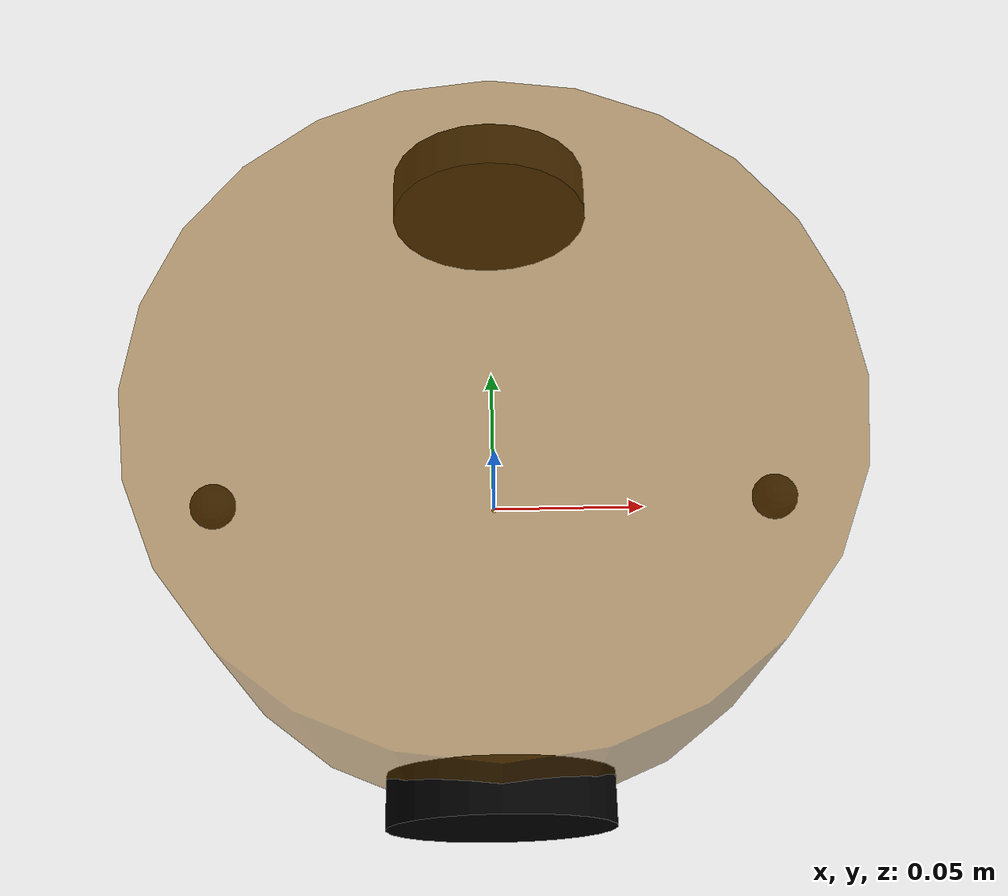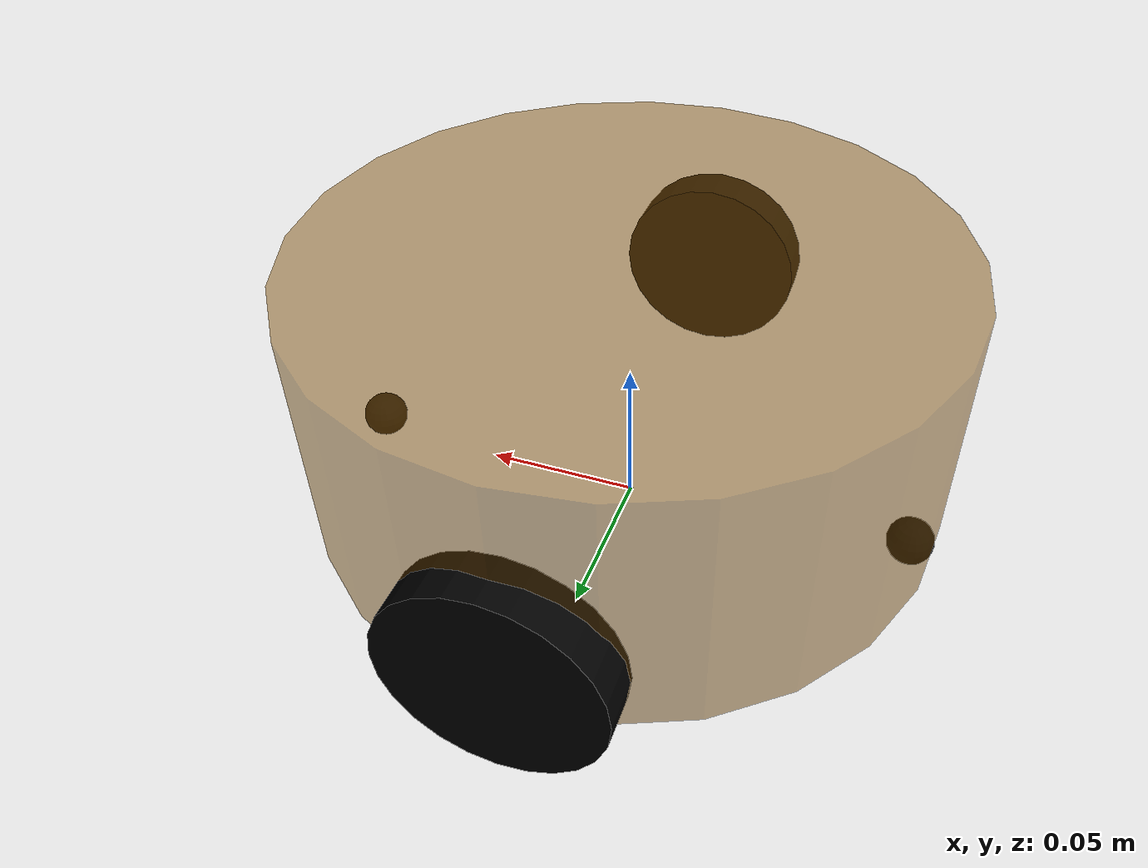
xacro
<?xml version="1.0"?>
<robot name="my_robot" xmlns:xacro="http://wiki.ros.org/xacro">

    <!-- Macros for inertia matrix -->
    <xacro:macro name="sphere_inertial_matrix" params="m r">
        <inertial>
            <mass value="${m}" />
            <inertia ixx="${2*m*r*r/5}" ixy="0" ixz="0"
                iyy="${2*m*r*r/5}" iyz="0"
                izz="${2*m*r*r/5}" />
        </inertial>
    </xacro:macro>

    <xacro:macro name="cylinder_inertial_matrix" params="m r h">
        <inertial>
            <mass value="${m}" />
            <inertia ixx="${m*(3*r*r+h*h)/12}" ixy = "0" ixz = "0"
                iyy="${m*(3*r*r+h*h)/12}" iyz = "0"
                izz="${m*r*r/2}" />
        </inertial>
    </xacro:macro>

    <xacro:macro name="Box_inertial_matrix" params="m l w h">
       <inertial>
               <mass value="${m}" />
               <inertia ixx="${m*(h*h + l*l)/12}" ixy = "0" ixz = "0"
                   iyy="${m*(w*w + l*l)/12}" iyz= "0"
                   izz="${m*(w*w + h*h)/12}" />
       </inertial>
   </xacro:macro>

    <!-- Base Robot -->
    <xacro:property name="PI" value="3.1415926"/>
    <material name="black">
        <color rgba="0.0 0.0 0.0 1.0" />
    </material>
    <xacro:property name="base_footprint_radius" value="0.001" />
    <xacro:property name="base_link_radius" value="0.1" />
    <xacro:property name="base_link_length" value="0.08" />
    <xacro:property name="earth_space" value="0.015" />
    <xacro:property name="base_link_m" value="0.5" />

    <link name="base_footprint">
      <visual>
        <geometry>
          <sphere radius="${base_footprint_radius}" />
        </geometry>
      </visual>
    </link>

    <link name="base_link">
      <visual>
        <geometry>
          <cylinder radius="${base_link_radius}" length="${base_link_length}" />
        </geometry>
        <origin xyz="0 0 0" rpy="0 0 0" />
        <material name="yellow">
          <color rgba="0.5 0.3 0.0 0.5" />
        </material>
      </visual>
      <collision>
        <geometry>
          <cylinder radius="${base_link_radius}" length="${base_link_length}" />
        </geometry>
        <origin xyz="0 0 0" rpy="0 0 0" />
      </collision>
      <xacro:cylinder_inertial_matrix m="${base_link_m}" r="${base_link_radius}" h="${base_link_length}" />
    </link>

    <joint name="base_link2base_footprint" type="fixed">
      <parent link="base_footprint" />
      <child link="base_link" />
      <origin xyz="0 0 ${earth_space + base_link_length / 2 }" />
    </joint>
    <gazebo reference="base_link">
        <material>Gazebo/Yellow</material>
    </gazebo>

    <!-- Wheels -->
    <xacro:property name="wheel_radius" value="0.0325" />
    <xacro:property name="wheel_length" value="0.015" />
    <xacro:property name="wheel_m" value="0.05" />

    <!-- Add Left Wheel -->
    <link name="left_wheel">
        <visual>
          <geometry>
            <cylinder radius="${wheel_radius}" length="${wheel_length}" />
          </geometry>
          <origin xyz="0.0 0.0 0.0" rpy="${PI / 2} 0.0 0.0" />
          <material name="black" />
        </visual>
        <collision>
          <geometry>
            <cylinder radius="${wheel_radius}" length="${wheel_length}" />
          </geometry>
          <origin xyz="0.0 0.0 0.0" rpy="${PI / 2} 0.0 0.0" />
        </collision>
        <xacro:cylinder_inertial_matrix m="${wheel_m}" r="${wheel_radius}" h="${wheel_length}" />
    </link>

    <joint name="left_wheel2base_link" type="continuous">
        <parent link="base_link" />
        <child link="left_wheel" />
        <origin xyz="0 ${base_link_radius} ${-(earth_space + base_link_length / 2 - wheel_radius) }" />
        <axis xyz="0 1 0" />
    </joint>
    <gazebo reference="left_wheel">
        <material>Gazebo/Red</material>
    </gazebo>

    <!-- Add Right Wheel -->
    <link name="right_wheel">
        <visual>
          <geometry>
            <cylinder radius="${wheel_radius}" length="${wheel_length}" />
          </geometry>
          <origin xyz="0.0 0.0 0.0" rpy="${PI / 2} 0.0 0.0" />
          <material name="black" />
        </visual>
        <collision>
          <geometry>
            <cylinder radius="${wheel_radius}" length="${wheel_length}" />
          </geometry>
          <origin xyz="0.0 0.0 0.0" rpy="${PI / 2} 0.0 0.0" />
        </collision>
        <xacro:cylinder_inertial_matrix m="${wheel_m}" r="${wheel_radius}" h="${wheel_length}" />
    </link>

    <joint name="right_wheel2base_link" type="continuous">
        <parent link="base_link" />
        <child link="right_wheel" />
        <origin xyz="0 ${-base_link_radius} ${-(earth_space + base_link_length / 2 - wheel_radius) }" />
        <axis xyz="0 1 0" />
    </joint>
    <gazebo reference="right_wheel">
        <material>Gazebo/Red</material>
    </gazebo>

    <!-- Support Wheels -->
    <xacro:property name="support_wheel_radius" value="0.0075" />
    <xacro:property name="support_wheel_m" value="0.03" />

    <!-- Add Front Support Wheel -->
    <link name="front_wheel">
        <visual>
            <geometry>
                <sphere radius="${support_wheel_radius}" />
            </geometry>
            <origin xyz="0 0 0" rpy="0 0 0" />
            <material name="black" />
        </visual>
        <collision>
            <geometry>
                <sphere radius="${support_wheel_radius}" />
            </geometry>
            <origin xyz="0 0 0" rpy="0 0 0" />
        </collision>
        <xacro:sphere_inertial_matrix m="${support_wheel_m}" r="${support_wheel_radius}" />
    </link>

    <joint name="front_wheel2base_link" type="continuous">
        <parent link="base_link" />
        <child link="front_wheel" />
        <origin xyz="${base_link_radius - support_wheel_radius} 0 ${-(base_link_length / 2 + earth_space / 2)}" />
        <axis xyz="1 1 1" />
    </joint>
    <gazebo reference="front_wheel">
        <material>Gazebo/Red</material>
    </gazebo>

    <!-- Add Back Support Wheel -->
    <link name="back_wheel">
        <visual>
            <geometry>
                <sphere radius="${support_wheel_radius}" />
            </geometry>
            <origin xyz="0 0 0" rpy="0 0 0" />
            <material name="black" />
        </visual>
        <collision>
            <geometry>
                <sphere radius="${support_wheel_radius}" />
            </geometry>
            <origin xyz="0 0 0" rpy="0 0 0" />
        </collision>
        <xacro:sphere_inertial_matrix m="${support_wheel_m}" r="${support_wheel_radius}" />
    </link>

    <joint name="back_wheel2base_link" type="continuous">
        <parent link="base_link" />
        <child link="back_wheel" />
        <origin xyz="${-base_link_radius + support_wheel_radius} 0 ${-(base_link_length / 2 + earth_space / 2)}" />
        <axis xyz="1 1 1" />
    </joint>
    <gazebo reference="back_wheel">
        <material>Gazebo/Red</material>
    </gazebo>

    <!-- Motion Transmission -->
    <xacro:macro name="joint_trans" params="joint_name">
        <transmission name="${joint_name}_trans">
            <type>transmission_interface/SimpleTransmission</type>
            <joint name="${joint_name}">
                <hardwareInterface>hardware_interface/VelocityJointInterface</hardwareInterface>
            </joint>
            <actuator name="${joint_name}_motor">
                <hardwareInterface>hardware_interface/VelocityJointInterface</hardwareInterface>
                <mechanicalReduction>1</mechanicalReduction>
            </actuator>
        </transmission>
    </xacro:macro>

    <xacro:joint_trans joint_name="left_wheel2base_link" />
    <xacro:joint_trans joint_name="right_wheel2base_link" />

    <gazebo>
        <plugin name="differential_drive_controller" filename="libgazebo_ros_diff_drive.so">
            <rosDebugLevel>Debug</rosDebugLevel>
            <publishWheelTF>true</publishWheelTF>
            <publishTf>1</publishTf>
            <publishWheelJointState>true</publishWheelJointState>
            <alwaysOn>true</alwaysOn>
            <updateRate>100.0</updateRate>
            <legacyMode>true</legacyMode>
            <leftJoint>left_wheel2base_link</leftJoint>
            <rightJoint>right_wheel2base_link</rightJoint>
            <wheelSeparation>${base_link_radius * 2}</wheelSeparation>
            <wheelDiameter>${wheel_radius * 2}</wheelDiameter>
            <broadcastTF>1</broadcastTF>
            <wheelTorque>30</wheelTorque>
            <wheelAcceleration>1.8</wheelAcceleration>
            <commandTopic>cmd_vel</commandTopic>
            <odometryFrame>odom</odometryFrame>
            <odometryTopic>odom</odometryTopic>
            <robotBaseFrame>base_footprint</robotBaseFrame>
        </plugin>
        <plugin name="p3d_base_controller" filename="libgazebo_ros_p3d.so">
            <alwaysOn>true</alwaysOn>
            <updateRate>50.0</updateRate>
            <bodyName>base_footprint</bodyName>
            <topicName>base_pose_truth</topicName>
            <gaussianNoise>0.01</gaussianNoise>
            <frameName>world</frameName>
            <xyzOffsets>0 0 0</xyzOffsets>
            <rpyOffsets>0 0 0</rpyOffsets>
        </plugin>
    </gazebo>
</robot>
